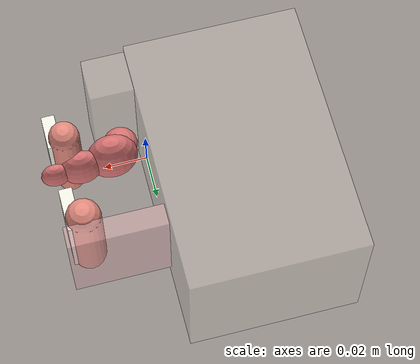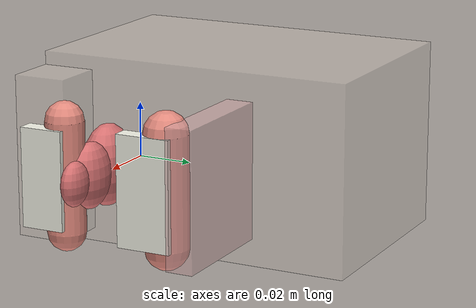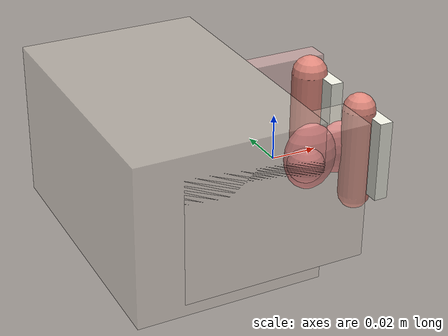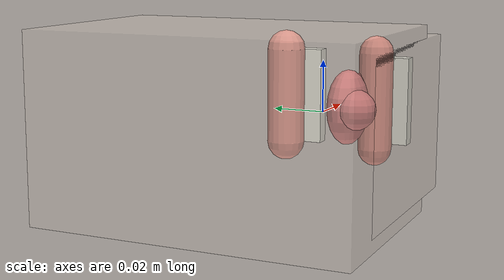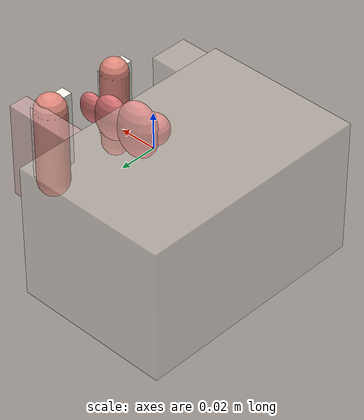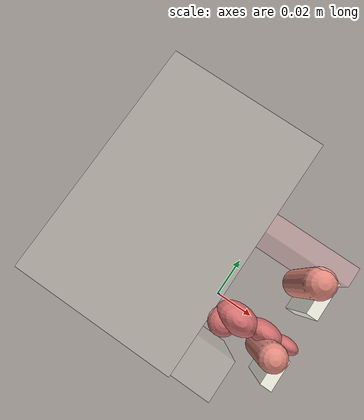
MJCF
<mujoco model="openjaw_mouth">
  <compiler angle="radian" coordinate="local"/>

  <option timestep="0.002" gravity="0 -9.81 0" integrator="implicit">
    <flag contact="enable"/>
  </option>

  <default>
    <joint damping="0.5" armature="0.01"/>
    <geom friction="0.8 0.005 0.001" condim="3" margin="0.001"/>
    <general ctrlrange="-0.5 0.5" ctrllimited="true"/>
  </default>

  <asset>
    <material name="skull_mat" rgba="0.9 0.85 0.8 0.3"/>
    <material name="tongue_mat" rgba="0.85 0.45 0.45 1"/>
    <material name="lip_mat" rgba="0.9 0.55 0.5 1"/>
    <material name="teeth_mat" rgba="0.95 0.95 0.9 1"/>
    <material name="palate_mat" rgba="0.9 0.7 0.7 0.5"/>
    <material name="gum_mat" rgba="0.85 0.5 0.5 0.5"/>
  </asset>

  <worldbody>
    <!-- Skull (static reference frame) -->
    <body name="skull" pos="0 0 0">
      <geom name="skull_back" type="box" size="0.04 0.06 0.035" pos="-0.04 0.02 0"
            material="skull_mat" contype="1" conaffinity="1"/>

      <!-- Palate (static, upper oral cavity boundary) -->
      <body name="palate" pos="0 0.04 0">
        <geom name="palate_hard" type="box" size="0.035 0.005 0.025"
              pos="0.01 0 0" material="palate_mat" contype="2" conaffinity="2"/>
        <geom name="palate_soft" type="capsule" size="0.008" fromto="-0.02 0 0 -0.04 -0.01 0"
              material="palate_mat" contype="2" conaffinity="2"/>
      </body>

      <!-- Upper teeth (static) -->
      <body name="teeth_upper" pos="0.04 0.025 0">
        <geom name="upper_incisors" type="box" size="0.003 0.01 0.02"
              material="teeth_mat" contype="4" conaffinity="4"/>
      </body>

      <!-- Upper lip (2 DOF: protrusion X, raise Y) -->
      <body name="upper_lip" pos="0.045 0.03 0">
        <joint name="upper_lip_x" type="slide" axis="1 0 0" range="-0.015 0.015"/>
        <joint name="upper_lip_y" type="slide" axis="0 1 0" range="-0.01 0.01"/>
        <geom name="upper_lip_geom" type="capsule" size="0.008"
              fromto="-0.01 0 -0.02 -0.01 0 0.02" material="lip_mat"
              contype="8" conaffinity="8"/>
      </body>

      <!-- Jaw (rigid, 2 DOF: open/close Y, protrusion X) -->
      <body name="jaw" pos="0 -0.02 0">
        <joint name="jaw_x" type="slide" axis="1 0 0" range="-0.01 0.01"/>
        <joint name="jaw_y" type="slide" axis="0 1 0" range="-0.03 0.005"/>
        <geom name="jaw_bone" type="box" size="0.04 0.01 0.03" pos="-0.02 -0.01 0"
              material="skull_mat" contype="1" conaffinity="1" mass="0.15"/>

        <!-- Lower teeth (attached to jaw) -->
        <body name="teeth_lower" pos="0.04 0.005 0">
          <geom name="lower_incisors" type="box" size="0.003 0.008 0.018"
                material="teeth_mat" contype="4" conaffinity="4"/>
        </body>

        <!-- Lower lip (2 DOF: protrusion X, lower Y) -->
        <body name="lower_lip" pos="0.045 0.01 0">
          <joint name="lower_lip_x" type="slide" axis="1 0 0" range="-0.015 0.015"/>
          <joint name="lower_lip_y" type="slide" axis="0 1 0" range="-0.015 0.01"/>
          <geom name="lower_lip_geom" type="capsule" size="0.007"
                fromto="-0.01 0 -0.02 -0.01 0 0.02" material="lip_mat"
                contype="8" conaffinity="8"/>
        </body>

        <!-- Tongue base (attached to jaw floor) -->
        <body name="tongue_root" pos="0.01 0.01 0">
          <geom name="tongue_root_geom" type="sphere" size="0.008"
                material="tongue_mat" contype="16" conaffinity="16" mass="0.01"/>

          <!-- Tongue dorsum (2 DOF) -->
          <body name="tongue_dorsum" pos="0.005 0.005 0">
            <joint name="tongue_dorsum_x" type="slide" axis="1 0 0" range="-0.02 0.02"/>
            <joint name="tongue_dorsum_y" type="slide" axis="0 1 0" range="-0.015 0.025"/>
            <geom name="tongue_dorsum_geom" type="ellipsoid" size="0.012 0.008 0.015"
                  material="tongue_mat" contype="16" conaffinity="18" mass="0.02"/>

            <!-- Tongue blade (2 DOF) -->
            <body name="tongue_blade" pos="0.015 0.002 0">
              <joint name="tongue_blade_x" type="slide" axis="1 0 0" range="-0.015 0.015"/>
              <joint name="tongue_blade_y" type="slide" axis="0 1 0" range="-0.015 0.02"/>
              <geom name="tongue_blade_geom" type="ellipsoid" size="0.01 0.006 0.012"
                    material="tongue_mat" contype="16" conaffinity="18" mass="0.015"/>

              <!-- Tongue tip (2 DOF) -->
              <body name="tongue_tip" pos="0.012 0.001 0">
                <joint name="tongue_tip_x" type="slide" axis="1 0 0" range="-0.01 0.015"/>
                <joint name="tongue_tip_y" type="slide" axis="0 1 0" range="-0.01 0.02"/>
                <geom name="tongue_tip_geom" type="ellipsoid" size="0.007 0.004 0.008"
                      material="tongue_mat" contype="16" conaffinity="22" mass="0.008"/>
              </body>
            </body>
          </body>
        </body>
      </body>
    </body>

    <!-- Camera for visual feedback -->
    <camera name="frontal" pos="0.15 0.01 0" xyaxes="0 0 -1 0 1 0" fovy="45"/>
    <camera name="sagittal" pos="0 0.01 0.15" xyaxes="1 0 0 0 1 0" fovy="45"/>

    <!-- Lighting -->
    <light name="main_light" pos="0.1 0.1 0.1" dir="-1 -1 -1" diffuse="0.8 0.8 0.8"/>
  </worldbody>

  <actuator>
    <general name="act_tongue_dorsum_x" joint="tongue_dorsum_x" gainprm="50"/>
    <general name="act_tongue_dorsum_y" joint="tongue_dorsum_y" gainprm="50"/>
    <general name="act_tongue_blade_x"  joint="tongue_blade_x"  gainprm="40"/>
    <general name="act_tongue_blade_y"  joint="tongue_blade_y"  gainprm="40"/>
    <general name="act_tongue_tip_x"    joint="tongue_tip_x"    gainprm="30"/>
    <general name="act_tongue_tip_y"    joint="tongue_tip_y"    gainprm="30"/>
    <general name="act_jaw_x"           joint="jaw_x"           gainprm="80"/>
    <general name="act_jaw_y"           joint="jaw_y"           gainprm="80"/>
    <general name="act_upper_lip_x"     joint="upper_lip_x"     gainprm="30"/>
    <general name="act_upper_lip_y"     joint="upper_lip_y"     gainprm="30"/>
    <general name="act_lower_lip_x"     joint="lower_lip_x"     gainprm="30"/>
    <general name="act_lower_lip_y"     joint="lower_lip_y"     gainprm="30"/>
    <!-- Vocal loudness: virtual actuator stored in userdata, not a physical joint.
         We use a stateless actuator mapped to a dummy site for API compatibility. -->
  </actuator>

  <!-- Sensors for proprioceptive feedback -->
  <sensor>
    <jointpos name="sens_tongue_dorsum_x" joint="tongue_dorsum_x"/>
    <jointpos name="sens_tongue_dorsum_y" joint="tongue_dorsum_y"/>
    <jointpos name="sens_tongue_blade_x"  joint="tongue_blade_x"/>
    <jointpos name="sens_tongue_blade_y"  joint="tongue_blade_y"/>
    <jointpos name="sens_tongue_tip_x"    joint="tongue_tip_x"/>
    <jointpos name="sens_tongue_tip_y"    joint="tongue_tip_y"/>
    <jointpos name="sens_jaw_x"           joint="jaw_x"/>
    <jointpos name="sens_jaw_y"           joint="jaw_y"/>
    <jointpos name="sens_upper_lip_x"     joint="upper_lip_x"/>
    <jointpos name="sens_upper_lip_y"     joint="upper_lip_y"/>
    <jointpos name="sens_lower_lip_x"     joint="lower_lip_x"/>
    <jointpos name="sens_lower_lip_y"     joint="lower_lip_y"/>
    <jointvel name="sensv_tongue_dorsum_x" joint="tongue_dorsum_x"/>
    <jointvel name="sensv_tongue_dorsum_y" joint="tongue_dorsum_y"/>
    <jointvel name="sensv_tongue_blade_x"  joint="tongue_blade_x"/>
    <jointvel name="sensv_tongue_blade_y"  joint="tongue_blade_y"/>
    <jointvel name="sensv_tongue_tip_x"    joint="tongue_tip_x"/>
    <jointvel name="sensv_tongue_tip_y"    joint="tongue_tip_y"/>
    <jointvel name="sensv_jaw_x"           joint="jaw_x"/>
    <jointvel name="sensv_jaw_y"           joint="jaw_y"/>
    <jointvel name="sensv_upper_lip_x"     joint="upper_lip_x"/>
    <jointvel name="sensv_upper_lip_y"     joint="upper_lip_y"/>
    <jointvel name="sensv_lower_lip_x"     joint="lower_lip_x"/>
    <jointvel name="sensv_lower_lip_y"     joint="lower_lip_y"/>
  </sensor>
</mujoco>
